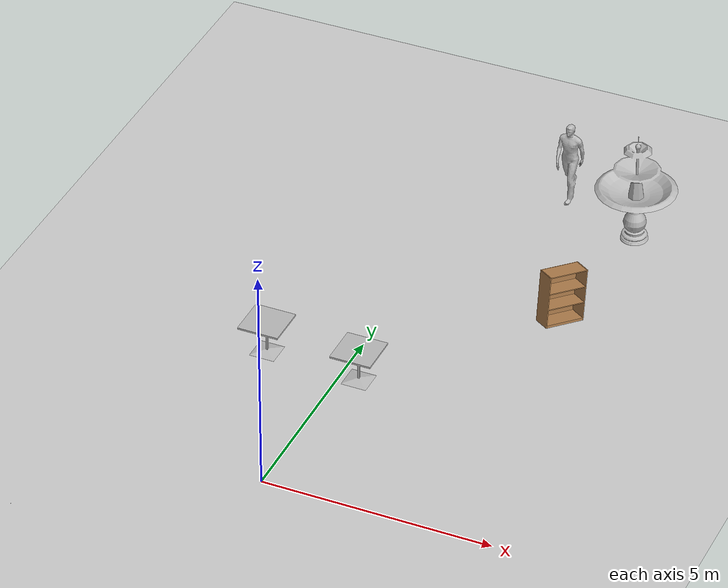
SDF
<sdf version="1.7">
 <world name="default">
  <light name="sun" type="directional">
   <pose>0 0 10 0 -0 0</pose>
   <diffuse>0.8 0.8 0.8 1</diffuse>
   <specular>0.2 0.2 0.2 1</specular>
   <attenuation>
    <range>1000</range>
    <constant>0.9</constant>
    <linear>0.01</linear>
    <quadratic>0.001</quadratic>
   </attenuation>
   <direction>-0.5 0.1 -0.9</direction>
   <spot><inner_angle>0</inner_angle><outer_angle>0</outer_angle><falloff>0</falloff></spot>
  </light>
  <model name="ground_plane">
   <static>1</static>
   <link name="link">
    <collision name="collision">
     <geometry><plane><normal>0 0 1</normal><size>100 100</size></plane></geometry>
     <surface><friction><ode><mu>100</mu><mu2>50</mu2></ode></friction></surface>
    </collision>
    <visual name="visual">
     <cast_shadows>0</cast_shadows>
     <geometry><plane><normal>0 0 1</normal><size>100 100</size></plane></geometry>
     <material>
      <script><uri>file://media/materials/scripts/gazebo.material</uri><name>Gazebo/Grey</name></script>
     </material>
    </visual>
   </link>
  </model>
  <gravity>0 0 -9.8</gravity>
  <magnetic_field>6e-06 2.3e-05 -4.2e-05</magnetic_field>
  <atmosphere type="adiabatic"/>
  <physics type="ode">
   <max_step_size>0.001</max_step_size>
   <real_time_factor>1</real_time_factor>
   <real_time_update_rate>1000</real_time_update_rate>
  </physics>
  <scene><ambient>0.4 0.4 0.4 1</ambient><background>0.7 0.7 0.7 1</background><shadows>1</shadows></scene>
  <audio><device>default</device></audio>
  <spherical_coordinates>
   <surface_model>EARTH_WGS84</surface_model>
   <latitude_deg>0</latitude_deg>
   <longitude_deg>0</longitude_deg>
   <elevation>0</elevation>
   <heading_deg>0</heading_deg>
  </spherical_coordinates>
  <model name="ball_bearing">
   <link name="link">
    <pose>0 0 0.003 0 -0 0</pose>
    <inertial>
     <mass>0.0011</mass>
     <inertia>
      <ixx>3.96e-09</ixx>
      <ixy>0</ixy>
      <ixz>0</ixz>
      <iyy>3.96e-09</iyy>
      <iyz>0</iyz>
      <izz>3.96e-09</izz>
     </inertia>
    </inertial>
    <collision name="collision">
     <geometry><sphere><radius>0.003</radius></sphere></geometry>
     <surface>
      <contact>
       <poissons_ratio>0.305</poissons_ratio>
       <elastic_modulus>2e+11</elastic_modulus>
       <ode><kp>100000</kp><kd>100</kd><max_vel>100</max_vel><min_depth>0.001</min_depth></ode>
      </contact>
      <friction>
       <torsional>
        <coefficient>1</coefficient>
        <use_patch_radius>0</use_patch_radius>
        <surface_radius>0.01</surface_radius>
       </torsional>
      </friction>
     </surface>
    </collision>
    <visual name="visual">
     <geometry><sphere><radius>0.003</radius></sphere></geometry>
     <material>
      <script><uri>file://media/materials/scripts/gazebo.material</uri><name>Gazebo/Grey</name></script>
     </material>
    </visual>
    <velocity_decay><linear>0</linear><angular>0.005</angular></velocity_decay>
   </link>
   <pose>-4.26499 -2.67146 -0.001 0 -0 0</pose>
  </model>
  <model name="cafe_table">
   <static>1</static>
   <link name="link">
    <collision name="surface">
     <pose>0 0 0.755 0 -0 0</pose>
     <geometry><box><size>0.913 0.913 0.04</size></box></geometry>
    </collision>
    <collision name="column">
     <pose>0 0 0.37 0 -0 0</pose>
     <geometry><box><size>0.042 0.042 0.74</size></box></geometry>
    </collision>
    <collision name="base">
     <pose>0 0 0.02 0 -0 0</pose>
     <geometry><box><size>0.56 0.56 0.04</size></box></geometry>
    </collision>
    <visual name="visual">
     <geometry><mesh><uri>model://cafe_table/meshes/cafe_table.dae</uri></mesh></geometry>
    </visual>
   </link>
   <pose>-1.74063 3.97994 0 0 -0 0</pose>
  </model>
  <model name="cafe_table_0">
   <static>1</static>
   <link name="link">
    <collision name="surface">
     <pose>0 0 0.755 0 -0 0</pose>
     <geometry><box><size>0.913 0.913 0.04</size></box></geometry>
    </collision>
    <collision name="column">
     <pose>0 0 0.37 0 -0 0</pose>
     <geometry><box><size>0.042 0.042 0.74</size></box></geometry>
    </collision>
    <collision name="base">
     <pose>0 0 0.02 0 -0 0</pose>
     <geometry><box><size>0.56 0.56 0.04</size></box></geometry>
    </collision>
    <visual name="visual">
     <geometry><mesh><uri>model://cafe_table/meshes/cafe_table.dae</uri></mesh></geometry>
    </visual>
   </link>
   <pose>0.406962 3.85576 0 0 -0 0</pose>
  </model>
  <model name="bookshelf">
   <static>1</static>
   <link name="link">
    <inertial><mass>1</mass></inertial>
    <collision name="back">
     <pose>0 0.005 0.6 0 -0 0</pose>
     <geometry><box><size>0.9 0.01 1.2</size></box></geometry>
    </collision>
    <visual name="visual1">
     <pose>0 0.005 0.6 0 -0 0</pose>
     <geometry><box><size>0.9 0.01 1.2</size></box></geometry>
     <material>
      <script><uri>file://media/materials/scripts/gazebo.material</uri><name>Gazebo/Wood</name></script>
     </material>
    </visual>
    <collision name="left_side">
     <pose>0.45 -0.195 0.6 0 -0 0</pose>
     <geometry><box><size>0.02 0.4 1.2</size></box></geometry>
    </collision>
    <visual name="visual2">
     <pose>0.45 -0.195 0.6 0 -0 0</pose>
     <geometry><box><size>0.02 0.4 1.2</size></box></geometry>
     <material>
      <script><uri>file://media/materials/scripts/gazebo.material</uri><name>Gazebo/Wood</name></script>
     </material>
    </visual>
    <collision name="right_side">
     <pose>-0.45 -0.195 0.6 0 -0 0</pose>
     <geometry><box><size>0.02 0.4 1.2</size></box></geometry>
    </collision>
    <visual name="visual3">
     <pose>-0.45 -0.195 0.6 0 -0 0</pose>
     <geometry><box><size>0.02 0.4 1.2</size></box></geometry>
     <material>
      <script><uri>file://media/materials/scripts/gazebo.material</uri><name>Gazebo/Wood</name></script>
     </material>
    </visual>
    <collision name="bottom">
     <pose>0 -0.195 0.03 0 -0 0</pose>
     <geometry><box><size>0.88 0.4 0.06</size></box></geometry>
    </collision>
    <visual name="visual4">
     <pose>0 -0.195 0.03 0 -0 0</pose>
     <geometry><box><size>0.88 0.4 0.06</size></box></geometry>
     <material>
      <script><uri>file://media/materials/scripts/gazebo.material</uri><name>Gazebo/Wood</name></script>
     </material>
    </visual>
    <collision name="top">
     <pose>0 -0.195 1.19 0 -0 0</pose>
     <geometry><box><size>0.88 0.4 0.02</size></box></geometry>
    </collision>
    <visual name="visual5">
     <pose>0 -0.195 1.19 0 -0 0</pose>
     <geometry><box><size>0.88 0.4 0.02</size></box></geometry>
     <material>
      <script><uri>file://media/materials/scripts/gazebo.material</uri><name>Gazebo/Wood</name></script>
     </material>
    </visual>
    <collision name="low_shelf">
     <pose>0 -0.195 0.43 0 -0 0</pose>
     <geometry><box><size>0.88 0.4 0.02</size></box></geometry>
    </collision>
    <visual name="visual6">
     <pose>0 -0.195 0.43 0 -0 0</pose>
     <geometry><box><size>0.88 0.4 0.02</size></box></geometry>
     <material>
      <script><uri>file://media/materials/scripts/gazebo.material</uri><name>Gazebo/Wood</name></script>
     </material>
    </visual>
    <collision name="high_shelf">
     <pose>0 -0.195 0.8 0 -0 0</pose>
     <geometry><box><size>0.88 0.4 0.02</size></box></geometry>
    </collision>
    <visual name="visual7">
     <pose>0 -0.195 0.8 0 -0 0</pose>
     <geometry><box><size>0.88 0.4 0.02</size></box></geometry>
     <material>
      <script><uri>file://media/materials/scripts/gazebo.material</uri><name>Gazebo/Wood</name></script>
     </material>
    </visual>
   </link>
   <pose>3.27297 7.55684 0 -0.086011 0.115433 0.928181</pose>
  </model>
  <model name="person_walking">
   <link name="link">
    <inertial>
     <pose>0 0 0.95 0 -0 0</pose>
     <mass>80</mass>
     <inertia><ixx>27.82</ixx><ixy>0</ixy><ixz>0</ixz><iyy>24.88</iyy><iyz>0</iyz><izz>4.57</izz></inertia>
    </inertial>
    <collision name="bottom">
     <pose>0 0 0.01 0 -0 0</pose>
     <geometry><box><size>0.35 0.75 0.02</size></box></geometry>
    </collision>
    <collision name="person">
     <pose>0 0 -0.02 0 -0 0</pose>
     <geometry><mesh><uri>model://person_walking/meshes/walking.dae</uri></mesh></geometry>
    </collision>
    <visual name="visual">
     <pose>0 0 -0.02 0 -0 0</pose>
     <geometry><mesh><uri>model://person_walking/meshes/walking.dae</uri></mesh></geometry>
    </visual>
   </link>
   <pose>1.99885 11.5494 0.189799 2e-06 -1e-06 -0.104378</pose>
  </model>
  <model name="fountain">
   <static>1</static>
   <link name="link">
    <collision name="collision">
     <geometry><mesh><uri>model://fountain/meshes/fountain.dae</uri></mesh></geometry>
    </collision>
    <visual name="visual">
     <geometry><mesh><uri>model://fountain/meshes/fountain.dae</uri></mesh></geometry>
    </visual>
   </link>
   <pose>3.76879 10.8891 0 0 -0 0</pose>
  </model>
 </world>
</sdf>
